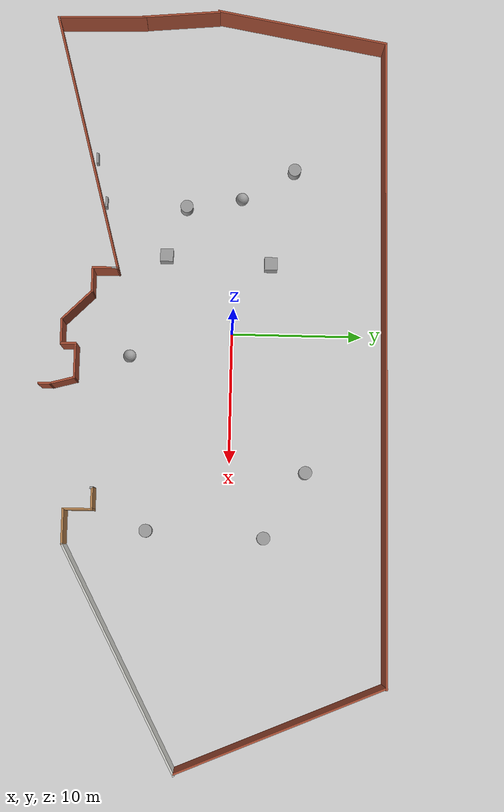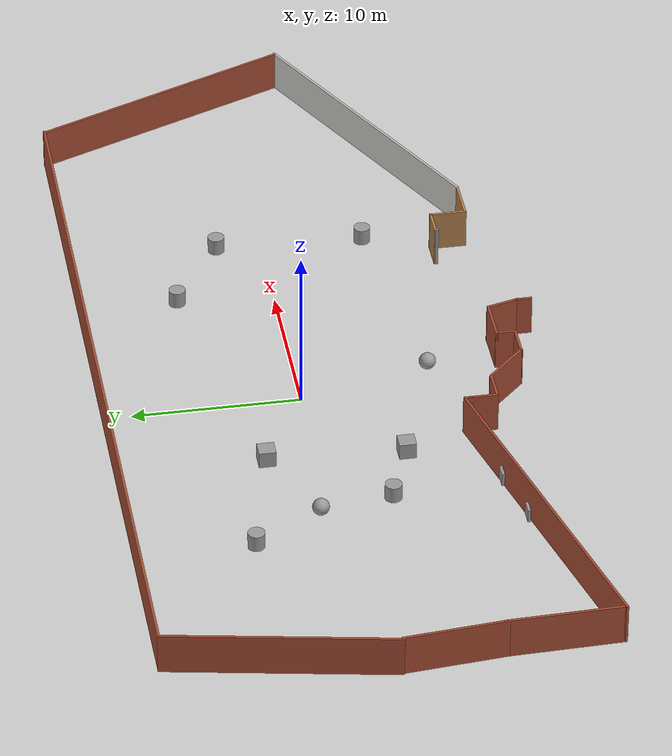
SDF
<sdf version="1.7">
 <world name="default">
  <light name="sun" type="directional">
   <pose>0 0 10 0 -0 0</pose>
   <diffuse>0.8 0.8 0.8 1</diffuse>
   <specular>0.2 0.2 0.2 1</specular>
   <attenuation>
    <range>1000</range>
    <constant>0.9</constant>
    <linear>0.01</linear>
    <quadratic>0.001</quadratic>
   </attenuation>
   <direction>-0.5 0.1 -0.9</direction>
   <spot><inner_angle>0</inner_angle><outer_angle>0</outer_angle><falloff>0</falloff></spot>
  </light>
  <model name="ground_plane">
   <static>1</static>
   <link name="link">
    <collision name="collision">
     <geometry><plane><normal>0 0 1</normal><size>100 100</size></plane></geometry>
     <surface><friction><ode><mu>100</mu><mu2>50</mu2></ode></friction></surface>
    </collision>
    <visual name="visual">
     <cast_shadows>0</cast_shadows>
     <geometry><plane><normal>0 0 1</normal><size>100 100</size></plane></geometry>
     <material>
      <script><uri>file://media/materials/scripts/gazebo.material</uri><name>Gazebo/Grey</name></script>
     </material>
    </visual>
   </link>
  </model>
  <gravity>0 0 -9.8</gravity>
  <magnetic_field>6e-06 2.3e-05 -4.2e-05</magnetic_field>
  <atmosphere type="adiabatic"/>
  <physics type="ode">
   <max_step_size>0.001</max_step_size>
   <real_time_factor>1</real_time_factor>
   <real_time_update_rate>1000</real_time_update_rate>
  </physics>
  <scene><ambient>0.4 0.4 0.4 1</ambient><background>0.7 0.7 0.7 1</background><shadows>1</shadows></scene>
  <audio><device>default</device></audio>
  <spherical_coordinates>
   <surface_model>EARTH_WGS84</surface_model>
   <latitude_deg>0</latitude_deg>
   <longitude_deg>0</longitude_deg>
   <elevation>0</elevation>
   <heading_deg>0</heading_deg>
  </spherical_coordinates>
  <model name="basic_floor_plan">
   <pose>3.66706 -1.34194 0 0 -0 0</pose>
   <link name="Wall_0">
    <collision name="Wall_0_Collision">
     <geometry><box><size>0.5 0.15 2.5</size></box></geometry>
     <pose>0 0 1.25 0 -0 0</pose>
    </collision>
    <visual name="Wall_0_Visual">
     <pose>0 0 1.25 0 -0 0</pose>
     <geometry><box><size>0.5 0.15 2.5</size></box></geometry>
     <material>
      <script><uri>file://media/materials/scripts/gazebo.material</uri><name>Gazebo/Grey</name></script>
      <ambient>1 1 1 1</ambient>
     </material>
     <meta><layer>0</layer></meta>
    </visual>
    <pose>-8.20051 -7.70684 0 0 -0 1.5708</pose>
   </link>
   <link name="Wall_1">
    <collision name="Wall_1_Collision">
     <geometry><box><size>2 0.15 2.5</size></box></geometry>
     <pose>0 0 1.25 0 -0 0</pose>
    </collision>
    <visual name="Wall_1_Visual">
     <pose>0 0 1.25 0 -0 0</pose>
     <geometry><box><size>2 0.15 2.5</size></box></geometry>
     <material>
      <script><uri>file://media/materials/scripts/gazebo.material</uri><name>Gazebo/Bricks</name></script>
      <ambient>1 1 1 1</ambient>
     </material>
     <meta><layer>0</layer></meta>
    </visual>
    <pose>-8.20051 -8.45684 0 0 -0 -1.5708</pose>
   </link>
   <link name="Wall_10">
    <collision name="Wall_10_Collision">
     <geometry><box><size>1 0.15 2.5</size></box></geometry>
     <pose>0 0 1.25 0 -0 0</pose>
    </collision>
    <visual name="Wall_10_Visual">
     <pose>0 0 1.25 0 -0 0</pose>
     <geometry><box><size>1 0.15 2.5</size></box></geometry>
     <material>
      <script><uri>file://media/materials/scripts/gazebo.material</uri><name>Gazebo/Bricks</name></script>
      <ambient>1 1 1 1</ambient>
     </material>
     <meta><layer>0</layer></meta>
    </visual>
    <pose>0.770487 -12.6858 0 0 -0 -1.5708</pose>
   </link>
   <link name="Wall_12">
    <collision name="Wall_12_Collision">
     <geometry><box><size>20.8397 0.15 2.5</size></box></geometry>
     <pose>0 0 1.25 0 -0 0</pose>
    </collision>
    <visual name="Wall_12_Visual">
     <pose>0 0 1.25 0 -0 0</pose>
     <geometry><box><size>20.8397 0.15 2.5</size></box></geometry>
     <material>
      <script><uri>file://media/materials/scripts/gazebo.material</uri><name>Gazebo/Bricks</name></script>
      <ambient>1 1 1 1</ambient>
     </material>
     <meta><layer>0</layer></meta>
    </visual>
    <pose>-18.2114 -10.14 0 0 -0 -2.88302</pose>
   </link>
   <link name="Wall_13">
    <collision name="Wall_13_Collision">
     <geometry><box><size>6.78231 0.15 2.5</size></box></geometry>
     <pose>0 0 1.25 0 -0 0</pose>
    </collision>
    <visual name="Wall_13_Visual">
     <pose>0 0 1.25 0 -0 0</pose>
     <geometry><box><size>6.78231 0.15 2.5</size></box></geometry>
     <material>
      <script><uri>file://media/materials/scripts/gazebo.material</uri><name>Gazebo/Bricks</name></script>
      <ambient>1 1 1 1</ambient>
     </material>
     <meta><layer>0</layer></meta>
    </visual>
    <pose>-28.2999 -9.28505 0 0 -0 1.59719</pose>
   </link>
   <link name="Wall_14">
    <collision name="Wall_14_Collision">
     <geometry><box><size>6.11149 0.15 2.5</size></box></geometry>
     <pose>0 0 1.25 0 -0 0</pose>
    </collision>
    <visual name="Wall_14_Visual">
     <pose>0 0 1.25 0 -0 0</pose>
     <geometry><box><size>6.11149 0.15 2.5</size></box></geometry>
     <material>
      <script><uri>file://media/materials/scripts/gazebo.material</uri><name>Gazebo/Bricks</name></script>
      <ambient>1 1 1 1</ambient>
     </material>
     <meta><layer>0</layer></meta>
    </visual>
    <pose>-28.6522 -3.18614 0 0 -0 1.65977</pose>
   </link>
   <link name="Wall_15">
    <collision name="Wall_15_Collision">
     <geometry><box><size>13.4885 0.15 2.5</size></box></geometry>
     <pose>0 0 1.25 0 -0 0</pose>
    </collision>
    <visual name="Wall_15_Visual">
     <pose>0 0 1.25 0 -0 0</pose>
     <geometry><box><size>13.4885 0.15 2.5</size></box></geometry>
     <material>
      <script><uri>file://media/materials/scripts/gazebo.material</uri><name>Gazebo/Bricks</name></script>
      <ambient>1 1 1 1</ambient>
     </material>
     <meta><layer>0</layer></meta>
    </visual>
    <pose>-27.8073 6.34281 0 0 -0 1.38953</pose>
   </link>
   <link name="Wall_16">
    <collision name="Wall_16_Collision">
     <geometry><box><size>49.3169 0.15 2.5</size></box></geometry>
     <pose>0 0 1.25 0 -0 0</pose>
    </collision>
    <visual name="Wall_16_Visual">
     <pose>0 0 1.25 0 -0 0</pose>
     <geometry><box><size>49.3169 0.15 2.5</size></box></geometry>
     <material>
      <script><uri>file://media/materials/scripts/gazebo.material</uri><name>Gazebo/Bricks</name></script>
      <ambient>1 1 1 1</ambient>
     </material>
     <meta><layer>0</layer></meta>
    </visual>
    <pose>-1.92924 12.9953 0 0 -0 0.003764</pose>
   </link>
   <link name="Wall_17">
    <collision name="Wall_17_Collision">
     <geometry><box><size>16.7306 0.15 2.5</size></box></geometry>
     <pose>0 0 1.25 0 -0 0</pose>
    </collision>
    <visual name="Wall_17_Visual">
     <pose>0 0 1.25 0 -0 0</pose>
     <geometry><box><size>16.7306 0.15 2.5</size></box></geometry>
     <material>
      <script><uri>file://media/materials/scripts/gazebo.material</uri><name>Gazebo/Bricks</name></script>
      <ambient>1 1 1 1</ambient>
     </material>
     <meta><layer>0</layer></meta>
    </visual>
    <pose>25.7322 5.42786 0 0 -0 -1.17834</pose>
   </link>
   <link name="Wall_18">
    <collision name="Wall_18_Collision">
     <geometry><box><size>18.6042 0.15 2.5</size></box></geometry>
     <pose>0 0 1.25 0 -0 0</pose>
    </collision>
    <visual name="Wall_18_Visual">
     <pose>0 0 1.25 0 -0 0</pose>
     <geometry><box><size>18.6042 0.15 2.5</size></box></geometry>
     <material>
      <script><uri>file://media/materials/scripts/gazebo.material</uri><name>Gazebo/CeilingTiled</name></script>
      <ambient>1 1 1 1</ambient>
     </material>
     <meta><layer>0</layer></meta>
    </visual>
    <pose>20.8535 -6.57349 0 0 -0 -2.65173</pose>
   </link>
   <link name="Wall_19">
    <collision name="Wall_19_Collision">
     <geometry><box><size>2.75 0.15 2.5</size></box></geometry>
     <pose>0 0 1.25 0 -0 0</pose>
    </collision>
    <visual name="Wall_19_Visual">
     <pose>0 0 1.25 0 -0 0</pose>
     <geometry><box><size>2.75 0.15 2.5</size></box></geometry>
     <material>
      <script><uri>file://media/materials/scripts/gazebo.material</uri><name>Gazebo/Wood</name></script>
      <ambient>1 1 1 1</ambient>
     </material>
     <meta><layer>0</layer></meta>
    </visual>
    <pose>11.4115 -10.9148 0 0 -0 3.14159</pose>
   </link>
   <link name="Wall_2">
    <collision name="Wall_2_Collision">
     <geometry><box><size>2 0.15 2.5</size></box></geometry>
     <pose>0 0 1.25 0 -0 0</pose>
    </collision>
    <visual name="Wall_2_Visual">
     <pose>0 0 1.25 0 -0 0</pose>
     <geometry><box><size>2 0.15 2.5</size></box></geometry>
     <material>
      <script><uri>file://media/materials/scripts/gazebo.material</uri><name>Gazebo/Bricks</name></script>
      <ambient>1 1 1 1</ambient>
     </material>
     <meta><layer>0</layer></meta>
    </visual>
    <pose>-7.27551 -9.38184 0 0 -0 0</pose>
   </link>
   <link name="Wall_20">
    <collision name="Wall_20_Collision">
     <geometry><box><size>2.25 0.15 2.5</size></box></geometry>
     <pose>0 0 1.25 0 -0 0</pose>
    </collision>
    <visual name="Wall_20_Visual">
     <pose>0 0 1.25 0 -0 0</pose>
     <geometry><box><size>2.25 0.15 2.5</size></box></geometry>
     <material>
      <script><uri>file://media/materials/scripts/gazebo.material</uri><name>Gazebo/Wood</name></script>
      <ambient>1 1 1 1</ambient>
     </material>
     <meta><layer>0</layer></meta>
    </visual>
    <pose>10.1115 -9.86484 0 0 -0 1.5708</pose>
   </link>
   <link name="Wall_21">
    <collision name="Wall_21_Collision">
     <geometry><box><size>1.75 0.15 2.5</size></box></geometry>
     <pose>0 0 1.25 0 -0 0</pose>
    </collision>
    <visual name="Wall_21_Visual">
     <pose>0 0 1.25 0 -0 0</pose>
     <geometry><box><size>1.75 0.15 2.5</size></box></geometry>
     <material>
      <script><uri>file://media/materials/scripts/gazebo.material</uri><name>Gazebo/Wood</name></script>
      <ambient>1 1 1 1</ambient>
     </material>
     <meta><layer>0</layer></meta>
    </visual>
    <pose>9.31149 -8.81484 0 0 -0 3.14159</pose>
   </link>
   <link name="Wall_22">
    <collision name="Wall_22_Collision">
     <geometry><box><size>0.25 0.15 2.5</size></box></geometry>
     <pose>0 0 1.25 0 -0 0</pose>
    </collision>
    <visual name="Wall_22_Visual">
     <pose>0 0 1.25 0 -0 0</pose>
     <geometry><box><size>0.25 0.15 2.5</size></box></geometry>
     <material>
      <script><uri>file://media/materials/scripts/gazebo.material</uri><name>Gazebo/Grey</name></script>
      <ambient>1 1 1 1</ambient>
     </material>
     <meta><layer>0</layer></meta>
    </visual>
    <pose>8.51126 -8.86506 0 0 -0 -1.57523</pose>
   </link>
   <link name="Wall_3">
    <collision name="Wall_3_Collision">
     <geometry><box><size>3.25 0.15 2.5</size></box></geometry>
     <pose>0 0 1.25 0 -0 0</pose>
    </collision>
    <visual name="Wall_3_Visual">
     <pose>0 0 1.25 0 -0 0</pose>
     <geometry><box><size>3.25 0.15 2.5</size></box></geometry>
     <material>
      <script><uri>file://media/materials/scripts/gazebo.material</uri><name>Gazebo/Bricks</name></script>
      <ambient>1 1 1 1</ambient>
     </material>
     <meta><layer>0</layer></meta>
    </visual>
    <pose>-5.25451 -10.4778 0 0 -0 -0.785398</pose>
   </link>
   <link name="Wall_4">
    <collision name="Wall_4_Collision">
     <geometry><box><size>2 0.15 2.5</size></box></geometry>
     <pose>0 0 1.25 0 -0 0</pose>
    </collision>
    <visual name="Wall_4_Visual">
     <pose>0 0 1.25 0 -0 0</pose>
     <geometry><box><size>2 0.15 2.5</size></box></geometry>
     <material>
      <script><uri>file://media/materials/scripts/gazebo.material</uri><name>Gazebo/Bricks</name></script>
      <ambient>1 1 1 1</ambient>
     </material>
     <meta><layer>0</layer></meta>
    </visual>
    <pose>-3.23351 -11.5738 0 0 -0 0</pose>
   </link>
   <link name="Wall_5">
    <collision name="Wall_5_Collision">
     <geometry><box><size>0.15 0.15 2.5</size></box></geometry>
     <pose>0 0 1.25 0 -0 0</pose>
    </collision>
    <visual name="Wall_5_Visual">
     <pose>0 0 1.25 0 -0 0</pose>
     <geometry><box><size>0.15 0.15 2.5</size></box></geometry>
     <material>
      <script><uri>file://media/materials/scripts/gazebo.material</uri><name>Gazebo/Grey</name></script>
      <ambient>1 1 1 1</ambient>
     </material>
     <meta><layer>0</layer></meta>
    </visual>
    <pose>-2.30851 -11.5738 0 0 -0 0</pose>
   </link>
   <link name="Wall_6">
    <collision name="Wall_6_Collision">
     <geometry><box><size>0.15 0.15 2.5</size></box></geometry>
     <pose>0 0 1.25 0 -0 0</pose>
    </collision>
    <visual name="Wall_6_Visual">
     <pose>0 0 1.25 0 -0 0</pose>
     <geometry><box><size>0.15 0.15 2.5</size></box></geometry>
     <material>
      <script><uri>file://media/materials/scripts/gazebo.material</uri><name>Gazebo/Grey</name></script>
      <ambient>1 1 1 1</ambient>
     </material>
     <meta><layer>0</layer></meta>
    </visual>
    <pose>-2.30851 -11.5738 0 0 -0 0</pose>
   </link>
   <link name="Wall_7">
    <collision name="Wall_7_Collision">
     <geometry><box><size>1.25 0.15 2.5</size></box></geometry>
     <pose>0 0 1.25 0 -0 0</pose>
    </collision>
    <visual name="Wall_7_Visual">
     <pose>0 0 1.25 0 -0 0</pose>
     <geometry><box><size>1.25 0.15 2.5</size></box></geometry>
     <material>
      <script><uri>file://media/materials/scripts/gazebo.material</uri><name>Gazebo/Bricks</name></script>
      <ambient>1 1 1 1</ambient>
     </material>
     <meta><layer>0</layer></meta>
    </visual>
    <pose>-2.30851 -11.0238 0 0 -0 1.5708</pose>
   </link>
   <link name="Wall_8">
    <collision name="Wall_8_Collision">
     <geometry><box><size>2.75 0.15 2.5</size></box></geometry>
     <pose>0 0 1.25 0 -0 0</pose>
    </collision>
    <visual name="Wall_8_Visual">
     <pose>0 0 1.25 0 -0 0</pose>
     <geometry><box><size>2.75 0.15 2.5</size></box></geometry>
     <material>
      <script><uri>file://media/materials/scripts/gazebo.material</uri><name>Gazebo/Bricks</name></script>
      <ambient>1 1 1 1</ambient>
     </material>
     <meta><layer>0</layer></meta>
    </visual>
    <pose>-1.00851 -10.4738 0 0 -0 0</pose>
   </link>
   <link name="Wall_9">
    <collision name="Wall_9_Collision">
     <geometry><box><size>2 0.15 2.5</size></box></geometry>
     <pose>0 0 1.25 0 -0 0</pose>
    </collision>
    <visual name="Wall_9_Visual">
     <pose>0 0 1.25 0 -0 0</pose>
     <geometry><box><size>2 0.15 2.5</size></box></geometry>
     <material>
      <script><uri>file://media/materials/scripts/gazebo.material</uri><name>Gazebo/Bricks</name></script>
      <ambient>1 1 1 1</ambient>
     </material>
     <meta><layer>0</layer></meta>
    </visual>
    <pose>0.530987 -11.3673 0 0 -0 -1.30891</pose>
   </link>
   <link name="Window_1">
    <collision name="Window_1_Collision">
     <geometry><box><size>0.8 0.17 0.8</size></box></geometry>
     <pose>0 0 0.4 0 -0 0</pose>
    </collision>
    <visual name="Window_1_Visual">
     <pose>0 0 0.4 0 -0 0</pose>
     <geometry><box><size>0.8 0.17 0.8</size></box></geometry>
     <material>
      <script><uri>file://media/materials/scripts/gazebo.material</uri><name>Gazebo/Grey</name></script>
     </material>
    </visual>
    <pose>-17.2316 -9.44443 0.5 0 -0 0</pose>
   </link>
   <link name="Window_2">
    <collision name="Window_2_Collision">
     <geometry><box><size>0.8 0.17 0.8</size></box></geometry>
     <pose>0 0 0.4 0 -0 0</pose>
    </collision>
    <visual name="Window_2_Visual">
     <pose>0 0 0.4 0 -0 0</pose>
     <geometry><box><size>0.8 0.17 0.8</size></box></geometry>
     <material>
      <script><uri>file://media/materials/scripts/gazebo.material</uri><name>Gazebo/Grey</name></script>
     </material>
    </visual>
    <pose>-13.7204 -8.6287 0.5 0 -0 0</pose>
   </link>
   <static>1</static>
  </model>
  <model name="unit_sphere">
   <pose>-10.6963 0.580753 0.5 0 -0 0</pose>
   <link name="link">
    <inertial>
     <mass>1</mass>
     <inertia><ixx>0.1</ixx><ixy>0</ixy><ixz>0</ixz><iyy>0.1</iyy><iyz>0</iyz><izz>0.1</izz></inertia>
    </inertial>
    <collision name="collision"><geometry><sphere><radius>0.5</radius></sphere></geometry></collision>
    <visual name="visual">
     <geometry><sphere><radius>0.5</radius></sphere></geometry>
     <material>
      <script><name>Gazebo/Grey</name><uri>file://media/materials/scripts/gazebo.material</uri></script>
     </material>
    </visual>
   </link>
  </model>
  <model name="unit_cylinder">
   <pose>-9.91492 -3.72826 0.499992 -3e-06 3e-06 0</pose>
   <link name="link">
    <inertial>
     <mass>1</mass>
     <inertia><ixx>0.145833</ixx><ixy>0</ixy><ixz>0</ixz><iyy>0.145833</iyy><iyz>0</iyz><izz>0.125</izz></inertia>
    </inertial>
    <collision name="collision">
     <geometry><cylinder><radius>0.5</radius><length>1</length></cylinder></geometry>
    </collision>
    <visual name="visual">
     <geometry><cylinder><radius>0.5</radius><length>1</length></cylinder></geometry>
     <material>
      <script><name>Gazebo/Grey</name><uri>file://media/materials/scripts/gazebo.material</uri></script>
     </material>
    </visual>
   </link>
  </model>
  <model name="unit_box">
   <pose>-5.47515 2.89642 0.499995 0 1e-05 0</pose>
   <link name="link">
    <inertial>
     <mass>1</mass>
     <inertia>
      <ixx>0.166667</ixx>
      <ixy>0</ixy>
      <ixz>0</ixz>
      <iyy>0.166667</iyy>
      <iyz>0</iyz>
      <izz>0.166667</izz>
     </inertia>
    </inertial>
    <collision name="collision"><geometry><box><size>1 1 1</size></box></geometry></collision>
    <visual name="visual">
     <geometry><box><size>1 1 1</size></box></geometry>
     <material>
      <script><name>Gazebo/Grey</name><uri>file://media/materials/scripts/gazebo.material</uri></script>
     </material>
    </visual>
   </link>
  </model>
  <model name="unit_cylinder_0">
   <pose>15.6319 2.67283 0.499998 3e-06 -4e-06 0</pose>
   <link name="link">
    <inertial>
     <mass>1</mass>
     <inertia><ixx>0.145833</ixx><ixy>0</ixy><ixz>0</ixz><iyy>0.145833</iyy><iyz>0</iyz><izz>0.125</izz></inertia>
    </inertial>
    <collision name="collision">
     <geometry><cylinder><radius>0.5</radius><length>1</length></cylinder></geometry>
    </collision>
    <visual name="visual">
     <geometry><cylinder><radius>0.5</radius><length>1</length></cylinder></geometry>
     <material>
      <script><name>Gazebo/Grey</name><uri>file://media/materials/scripts/gazebo.material</uri></script>
     </material>
    </visual>
   </link>
  </model>
  <model name="unit_cylinder_1">
   <pose>15.2448 -6.19607 0.499992 -3e-06 4e-06 0</pose>
   <link name="link">
    <inertial>
     <mass>1</mass>
     <inertia><ixx>0.145833</ixx><ixy>0</ixy><ixz>0</ixz><iyy>0.145833</iyy><iyz>0</iyz><izz>0.125</izz></inertia>
    </inertial>
    <collision name="collision">
     <geometry><cylinder><radius>0.5</radius><length>1</length></cylinder></geometry>
    </collision>
    <visual name="visual">
     <geometry><cylinder><radius>0.5</radius><length>1</length></cylinder></geometry>
     <material>
      <script><name>Gazebo/Grey</name><uri>file://media/materials/scripts/gazebo.material</uri></script>
     </material>
    </visual>
   </link>
  </model>
  <model name="unit_cylinder_2">
   <pose>10.6434 5.7648 0.499998 3e-06 -4e-06 0</pose>
   <link name="link">
    <inertial>
     <mass>1</mass>
     <inertia><ixx>0.145833</ixx><ixy>0</ixy><ixz>0</ixz><iyy>0.145833</iyy><iyz>0</iyz><izz>0.125</izz></inertia>
    </inertial>
    <collision name="collision">
     <geometry><cylinder><radius>0.5</radius><length>1</length></cylinder></geometry>
    </collision>
    <visual name="visual">
     <geometry><cylinder><radius>0.5</radius><length>1</length></cylinder></geometry>
     <material>
      <script><name>Gazebo/Grey</name><uri>file://media/materials/scripts/gazebo.material</uri></script>
     </material>
    </visual>
   </link>
  </model>
  <model name="unit_box_0">
   <pose>-5.99702 -5.18465 0.499995 0 1e-05 0</pose>
   <link name="link">
    <inertial>
     <mass>1</mass>
     <inertia>
      <ixx>0.166667</ixx>
      <ixy>0</ixy>
      <ixz>0</ixz>
      <iyy>0.166667</iyy>
      <iyz>0</iyz>
      <izz>0.166667</izz>
     </inertia>
    </inertial>
    <collision name="collision"><geometry><box><size>1 1 1</size></box></geometry></collision>
    <visual name="visual">
     <geometry><box><size>1 1 1</size></box></geometry>
     <material>
      <script><name>Gazebo/Grey</name><uri>file://media/materials/scripts/gazebo.material</uri></script>
     </material>
    </visual>
   </link>
  </model>
  <model name="unit_cylinder_3">
   <pose>-13.0342 4.64629 0.499993 -3e-06 -3e-06 0</pose>
   <link name="link">
    <inertial>
     <mass>1</mass>
     <inertia><ixx>0.145833</ixx><ixy>0</ixy><ixz>0</ixz><iyy>0.145833</iyy><iyz>0</iyz><izz>0.125</izz></inertia>
    </inertial>
    <collision name="collision">
     <geometry><cylinder><radius>0.5</radius><length>1</length></cylinder></geometry>
    </collision>
    <visual name="visual">
     <geometry><cylinder><radius>0.5</radius><length>1</length></cylinder></geometry>
     <material>
      <script><name>Gazebo/Grey</name><uri>file://media/materials/scripts/gazebo.material</uri></script>
     </material>
    </visual>
   </link>
  </model>
  <model name="unit_sphere_0">
   <pose>1.93132 -7.83085 0.5 0 -0 0</pose>
   <link name="link">
    <inertial>
     <mass>1</mass>
     <inertia><ixx>0.1</ixx><ixy>0</ixy><ixz>0</ixz><iyy>0.1</iyy><iyz>0</iyz><izz>0.1</izz></inertia>
    </inertial>
    <collision name="collision"><geometry><sphere><radius>0.5</radius></sphere></geometry></collision>
    <visual name="visual">
     <geometry><sphere><radius>0.5</radius></sphere></geometry>
     <material>
      <script><name>Gazebo/Grey</name><uri>file://media/materials/scripts/gazebo.material</uri></script>
     </material>
    </visual>
   </link>
  </model>
 </world>
</sdf>
